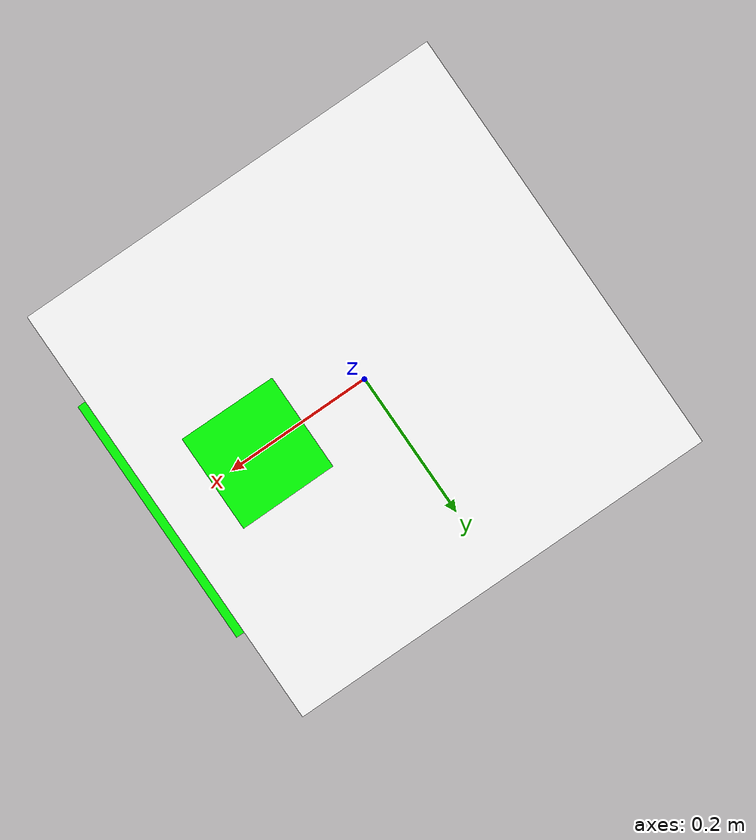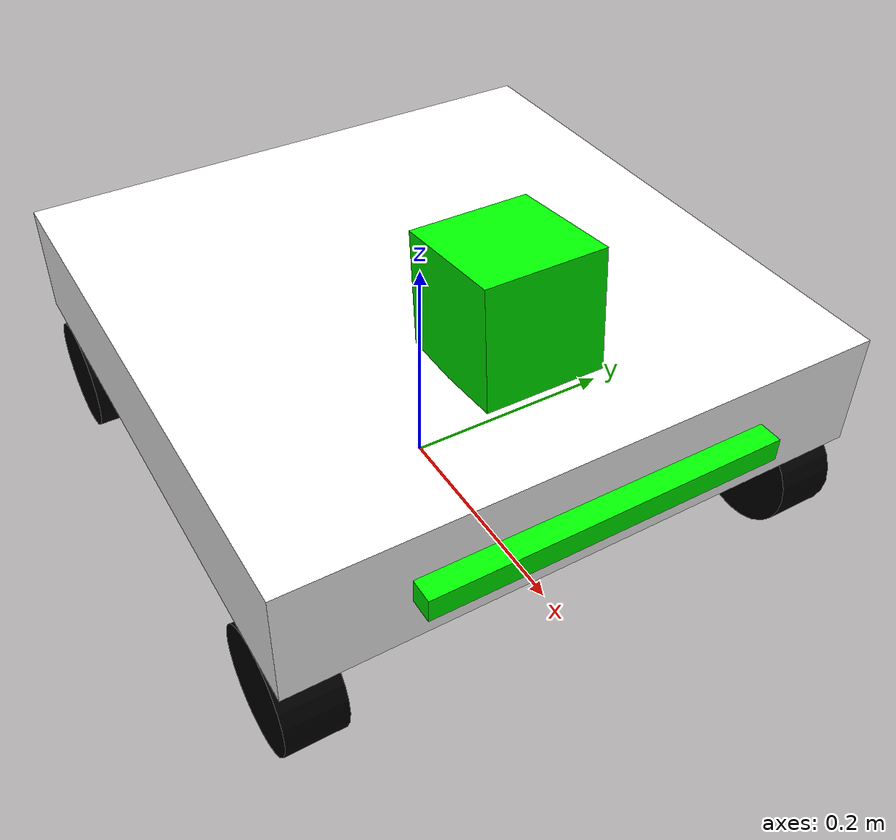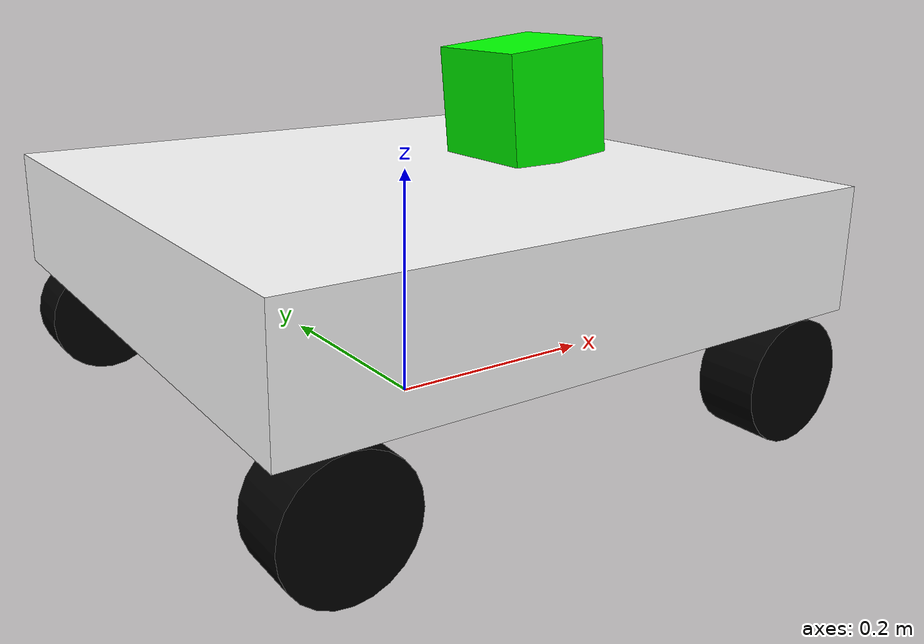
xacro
<?xml version="1.0"?>
<robot name="IEEE_sample_bot" xmlns:xacro="http://ros.org/wiki/xacro"
            xmlns:sensor="http://playerstage.sourceforge.net/gazebo/xmlschema/#sensor"
            xmlns:controller="http://playerstage.sourceforge.net/gazebo/xmlschema/#controller"
            xmlns:interface="http://playerstage.sourceforge.net/gazebo/xmlschema/#interface">

  <xacro:include filename="/home/raghav/IEEE_sample_bot/src/description/urdf/plugins.xacro"/>

  <!-- DEFINING GENERIC PROPERTIES THAT ARE USED IN THE XACRO FILE -->

  <!-- along x axis -->
  <xacro:property name="base_length" value="0.5"/>
  <!-- along y axis -->
  <xacro:property name="base_width" value="0.5"/>
  <!-- along z axis -->
  <xacro:property name="base_height" value="0.1"/>
  <xacro:property name="base_mass" value="5"/>
  <xacro:property name="wheel_dia" value="0.1"/>
  <xacro:property name="wheel_height" value="0.05"/>
  <xacro:property name="wheel_mass" value="0.5"/>
  <xacro:property name="camera_size" value="0.1"/>
  <xacro:property name="camera_link_name" value="camera"/>
  <xacro:property name="camera_mass" value="0.4"/>
  <xacro:property name="laser_link_name" value="hokuyo"/>
  <xacro:property name="laser_height" value="0.02"/>
  <xacro:property name="laser_width" value="0.02"/>
  <xacro:property name="laser_length" value="0.3"/>
  <xacro:property name="laser_mass" value="0.2"/>

  <!-- COLOURS FOR MATERIAL -->
  <material name="white">
    <color rgba="1 1 1 1"/>
  </material>

  <material name="black">
    <color rgba ="0 0 0 1"/>
  </material>

  <material name="green">
    <color rgba="0 1 0 1"/>
  </material>

  <!-- MACROS FOR INERTIAL PROPERTIES -->
  <xacro:macro name="base_inertial">
    <inertial>
      <mass value="${base_mass}" />
      <inertia ixx="${(1/12)*base_mass*((base_width*base_width)+(base_height*base_height))}"
        ixy="0.0"
        ixz="0.0"
        iyy="${(1/12)*base_mass*((base_height*base_height)+(base_length*base_length))}"
        iyz="0.0"
        izz="${(1/12)*base_mass*((base_width*base_width)+(base_length*base_length))}" />
    </inertial>
  </xacro:macro>

  <xacro:macro name="wheel_inertial">
    <inertial>
      <mass value="${wheel_mass}" />
      <inertia ixx="1.0" ixy="0.0" ixz="0.0" iyy="1.0" iyz="0.0" izz="1.0" />
    </inertial>
  </xacro:macro>

  <xacro:macro name="camera_inertial" params="camera_mass">
    <inertial>
      <mass value="${camera_mass}"/>
      <inertia ixx="1.0" ixy="0.0" ixz="0.0" iyy="1.0" iyz="0.0" izz="1.0" />
    </inertial>
  </xacro:macro>

  <xacro:macro name="hokuyo_inertial" params="laser_mass">
    <inertial>
      <mass value="${laser_mass}"/>
      <inertia ixx="1.0" ixy="0.0" ixz="0.0" iyy="1.0" iyz="0.0" izz="1.0" />
    </inertial>
  </xacro:macro>

  <!-- MACRO FOR GENERIC WHEEL. SUPPLY PARAMS TO PLACE THEM, JOINT INCLUDEDE IN MACRO -->
  <xacro:macro name="wheel" params="left_right front_back relx rely">
    <link name="${left_right}_${front_back}_wheel">
      <visual>
        <origin xyz="0 0 0" rpy="${pi/2} 0 0"/>
        <geometry>
          <cylinder radius="${wheel_dia/2}" length="${wheel_height}"/>
        </geometry>
        <material name="black"/>
      </visual>
      <collision>
        <origin xyz="0 0 0" rpy="${pi/2} 0 0"/>
        <geometry>
          <cylinder radius="${wheel_dia/2}" length="${wheel_height}"/>
        </geometry>
      </collision>
      <xacro:wheel_inertial/>
    </link>

    <joint name="${left_right}_${front_back}_wheel_to_base_link" type="continuous">
      <origin xyz="${relx*((base_length/2)-wheel_dia/2)} ${rely*((base_width/2-wheel_height/2))} ${wheel_dia/2}" rpy="0 0 0"/>
      <axis xyz="0 1 0" rpy="0 0 0"/>
      <parent link="base_link"/>
      <child link="${left_right}_${front_back}_wheel"/>
    </joint>
  </xacro:macro>

  <!-- MACRO FOR PHYSICAL ASPECTS OF CAMERA -->
  <xacro:macro name="camera" params="parent_link name camera_size camera_mass joint_x joint_y joint_z">
    <link name="${name}">
      <visual>
        <origin xyz="0 0 0" rpy="0 -0.1 0"/>
        <geometry>
          <box size="${camera_size} ${camera_size} ${camera_size}"/>
        </geometry>
        <material name="green"/>
      </visual>
      <collision>
        <origin xyz="0 0 0" rpy="0 -0.1 0"/>
        <geometry>
          <box size="${camera_size} ${camera_size} ${camera_size}"/>
        </geometry>
      </collision>
      <xacro:camera_inertial camera_mass="${camera_mass}"/>
    </link>

    <joint name="${name}_to_${parent_link}" type="fixed">
      <origin xyz="${joint_x} ${joint_y} ${joint_z}" rpy="0 0 0"/>
      <axis xyz="0 0 1" rpy="0 0 0"/>
      <parent link="${parent_link}"/>
      <child link="${name}"/>
    </joint>
  </xacro:macro>

  <!-- MACRO FOR PHYSICS ALSPECT OF LASER SCANNER -->
  <xacro:macro name="hokuyo_laser_scanner" params="parent_link name laser_height laser_width laser_length laser_mass joint_x joint_y joint_z">
    <link name="${name}">
      <visual>
        <origin xyz="0 0 0" rpy="0 0 0"/>
        <geometry>
          <box size="${laser_width} ${laser_length} ${laser_height}"/>
        </geometry>
        <material name="green"/>
      </visual>
      <collision>
        <geometry>
          <box size="${laser_width} ${laser_length} ${laser_height}"/>
        </geometry>
      </collision>
      <xacro:hokuyo_inertial laser_mass="${laser_mass}"/>
    </link>

    <joint name="${name}_to_${parent_link}" type="fixed">
      <origin xyz="${joint_x} ${joint_y} ${joint_z}" rpy="0 0 0"/>
      <axis xyz="0 0 0" rpy="0 0 0"/>
      <parent link="${parent_link}"/>
      <child link="${name}"/>
    </joint>
  </xacro:macro>

  <!-- BASE LINK. MAIN BOX TO WHICH WHEEL AND EVERYTHING ELSE IS TO BE ATTACHED -->
  <link name="base_link">
    <visual>
      <origin xyz="0 0 ${wheel_dia + base_height/2}" rpy="0 0 0"/>
      <geometry>
        <box size="${base_length} ${base_width} ${base_height}"/>
      </geometry>
      <material name="white"/>
    </visual>
    <collision>
      <origin xyz="0 0 ${wheel_dia + base_height/2}" rpy="0 0 0"/>
      <geometry>
        <box size="${base_length} ${base_width} ${base_height}"/>
      </geometry>
    </collision>
    <xacro:base_inertial/>
  </link>

  <!-- CREATING AN INSTANCE OF EACH WHEEL -->
  <xacro:wheel left_right="left" front_back="front" relx="1" rely="1"/>
  <xacro:wheel left_right="left" front_back="back" relx="-1" rely="1"/>
  <xacro:wheel left_right="right" front_back="back" relx="-1" rely="-1"/>
  <xacro:wheel left_right="right" front_back="front" relx="1" rely="-1"/>

  <!-- SETTING UP THE PLUGIN FOR FOUR WHEEL DIFFERENTIAL -->

  <gazebo>
    <plugin name="skid_steer_drive_controller" filename="libgazebo_ros_skid_steer_drive.so">
      <updateRate>100.0</updateRate>
      <robotNamespace>/</robotNamespace>
      <leftFrontJoint>left_front_wheel_to_base_link</leftFrontJoint>
      <rightFrontJoint>right_front_wheel_to_base_link</rightFrontJoint>
      <leftRearJoint>left_back_wheel_to_base_link</leftRearJoint>
      <rightRearJoint>right_back_wheel_to_base_link</rightRearJoint>
      <wheelSeparation>${base_width}</wheelSeparation>
      <wheelDiameter>${wheel_dia}</wheelDiameter>
      <robotBaseFrame>base_link</robotBaseFrame>
      <torque>3</torque>
      <topicName>cmd_vel</topicName>
      <broadcastTF>true</broadcastTF>
    </plugin>
</gazebo>

  <!-- CREATNG AN INSTANNCE OF A CAMERA -->
  <xacro:camera parent_link="base_link" name="${camera_link_name}" camera_size="${camera_size}" camera_mass="${camera_mass}" joint_x="${base_length/4}" joint_y="0" joint_z="${wheel_dia+base_height+camera_size/2}"/>

  <!-- CREATING AN INSTANCE OF LASER SCANNER -->
  <xacro:hokuyo_laser_scanner parent_link="base_link" name="${laser_link_name}" laser_height="${laser_height}" laser_width="${laser_width}" laser_length="${laser_length}" laser_mass="${laser_mass}" joint_x="${base_length/2+laser_width/2}" joint_y="0" joint_z="${wheel_dia+base_height/2}"/>
</robot>
